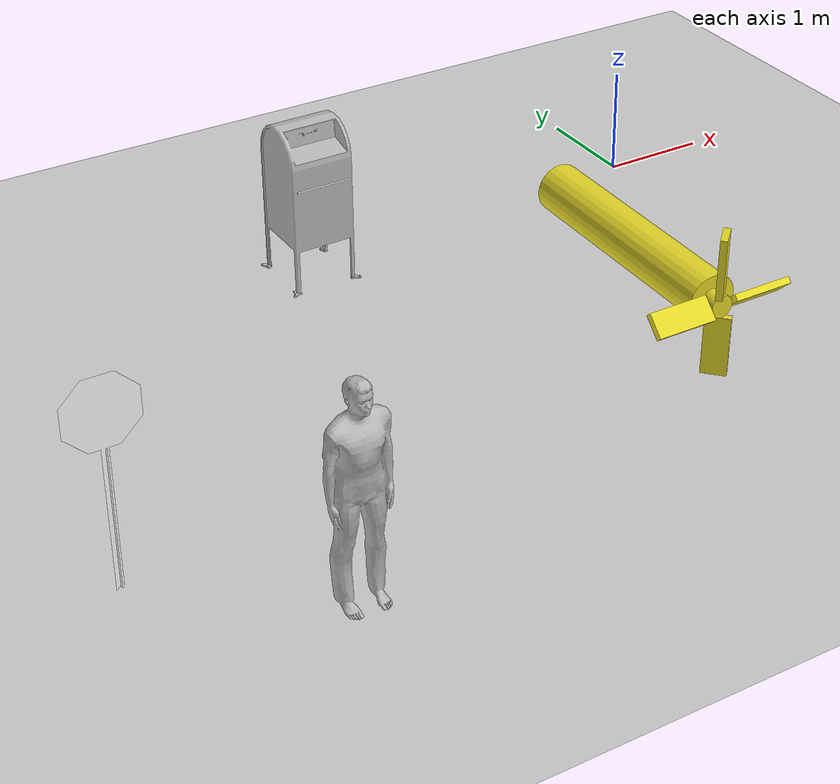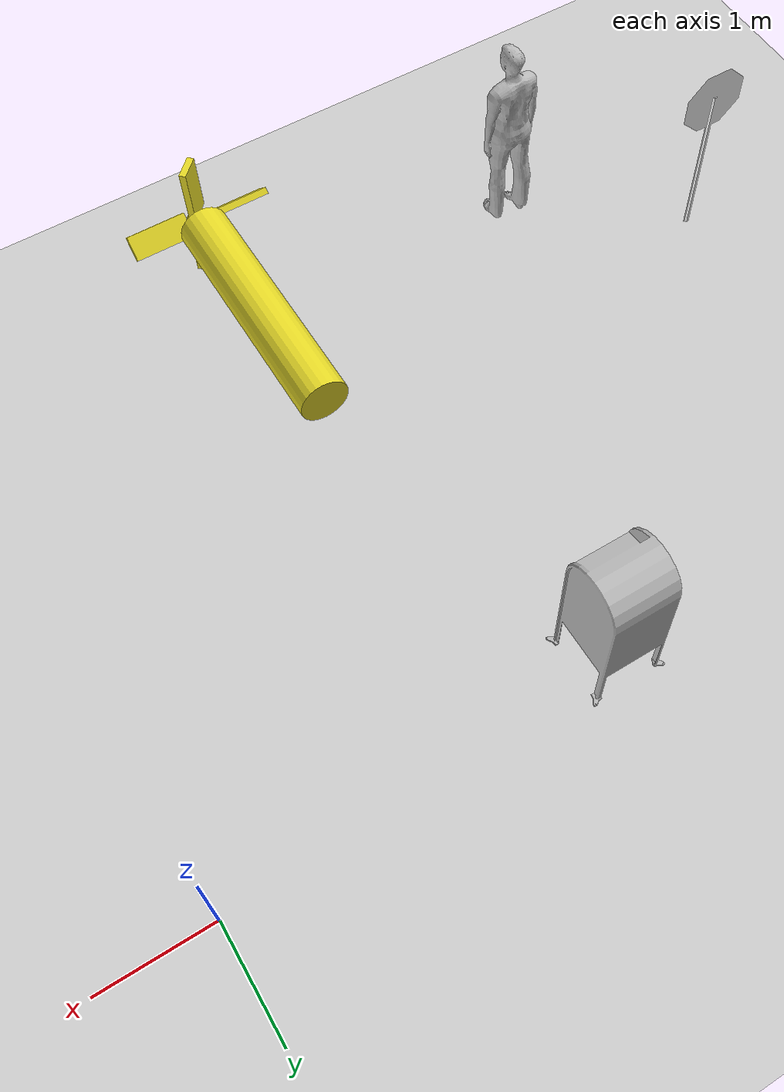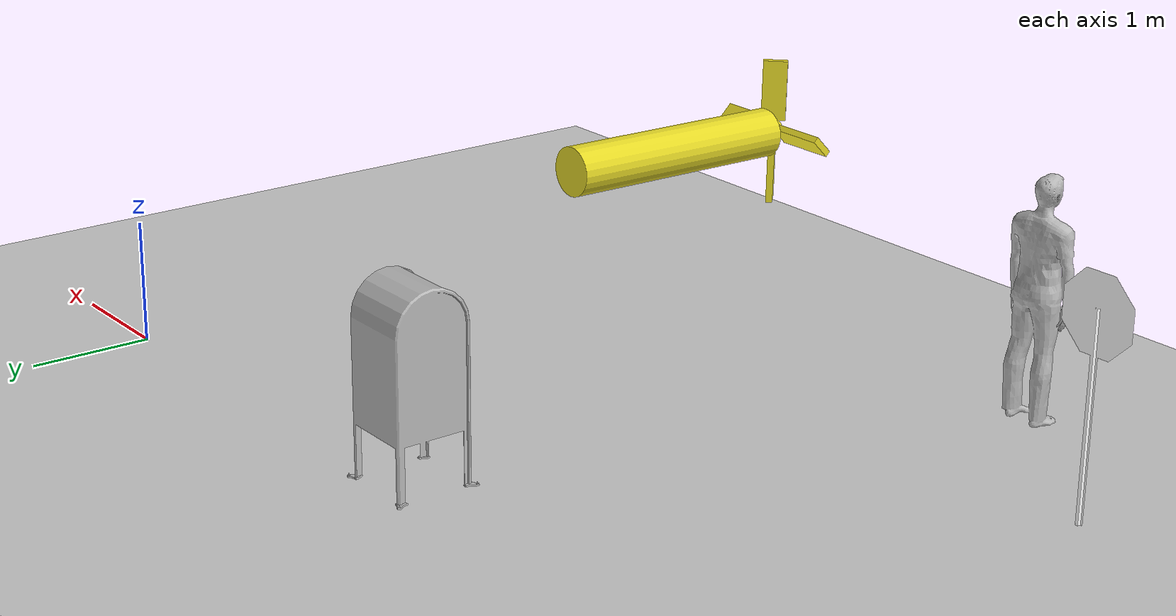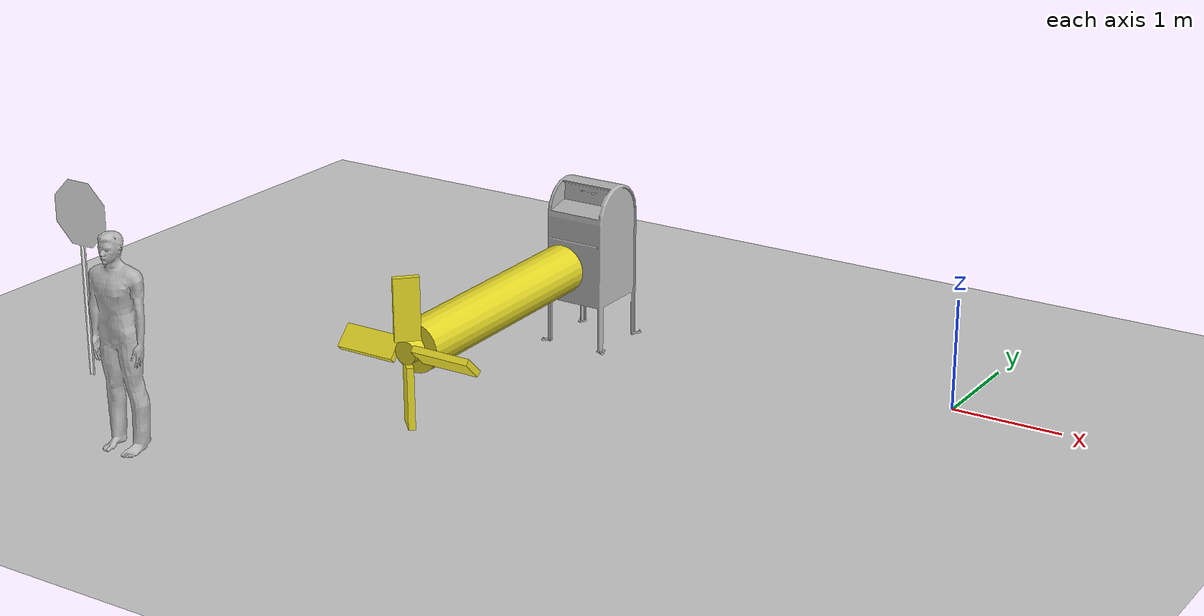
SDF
<sdf version="1.7">
 <world name="default">
  <light name="sun" type="directional">
   <cast_shadows>0</cast_shadows>
   <pose>0 0 10 0 -0 0</pose>
   <diffuse>0.8 0.8 0.8 1</diffuse>
   <specular>0.2 0.2 0.2 1</specular>
   <attenuation>
    <range>1000</range>
    <constant>0.9</constant>
    <linear>0.01</linear>
    <quadratic>0.001</quadratic>
   </attenuation>
   <direction>-0.5 0.1 -0.9</direction>
   <spot><inner_angle>0</inner_angle><outer_angle>0</outer_angle><falloff>0</falloff></spot>
  </light>
  <model name="ground_plane">
   <static>1</static>
   <link name="link">
    <collision name="collision">
     <geometry><plane><normal>0 0 1</normal><size>100 100</size></plane></geometry>
     <surface>
      <contact><collide_bitmask>65535</collide_bitmask></contact>
      <friction><ode><mu>100</mu><mu2>50</mu2></ode></friction>
     </surface>
    </collision>
    <visual name="visual">
     <cast_shadows>0</cast_shadows>
     <geometry><plane><normal>0 0 1</normal><size>100 100</size></plane></geometry>
     <material>
      <script><uri>file://media/materials/scripts/gazebo.material</uri><name>Gazebo/Grey</name></script>
     </material>
    </visual>
   </link>
  </model>
  <gravity>0 0 -9.8</gravity>
  <magnetic_field>6e-06 2.3e-05 -4.2e-05</magnetic_field>
  <atmosphere type="adiabatic"/>
  <physics type="ode">
   <max_step_size>0.001</max_step_size>
   <real_time_factor>1</real_time_factor>
   <real_time_update_rate>1000</real_time_update_rate>
  </physics>
  <scene><ambient>0.4 0.4 0.4 1</ambient><background>0.7 0.7 0.7 1</background><shadows>1</shadows></scene>
  <spherical_coordinates>
   <surface_model>EARTH_WGS84</surface_model>
   <latitude_deg>0</latitude_deg>
   <longitude_deg>0</longitude_deg>
   <elevation>0</elevation>
   <heading_deg>0</heading_deg>
  </spherical_coordinates>
  <model name="postbox">
   <static>1</static>
   <link name="link">
    <collision name="collision">
     <geometry><mesh><uri>model://postbox/meshes/postbox.dae</uri></mesh></geometry>
    </collision>
    <visual name="visual"><geometry><mesh><uri>model://postbox/meshes/postbox.dae</uri></mesh></geometry></visual>
   </link>
   <pose>-3.53904 -0.256443 0 0 -0 0</pose>
  </model>
  <model name="Stop Sign">
   <static>1</static>
   <link name="link">
    <collision name="collision">
     <geometry><mesh><uri>model://stop_sign/meshes/stop_sign.dae</uri></mesh></geometry>
    </collision>
    <visual name="visual">
     <geometry><mesh><uri>model://stop_sign/meshes/stop_sign.dae</uri></mesh></geometry>
     <material>
      <script>
       <uri>model://stop_sign/materials/scripts</uri>
       <uri>model://stop_sign/materials/textures</uri>
       <name>StopSign/Diffuse</name>
      </script>
     </material>
    </visual>
   </link>
   <pose>-6.77786 -3.49675 0 0 -0 0</pose>
  </model>
  <model name="submarine">
   <pose>-2.3987 -3.51217 1.56078 1.58363 -0 0</pose>
   <link name="body">
    <inertial>
     <mass>251.327</mass>
     <inertia><ixx>86.2891</ixx><ixy>0</ixy><ixz>0</ixz><iyy>86.2891</iyy><iyz>0</iyz><izz>5.02655</izz></inertia>
    </inertial>
    <visual name="body_visual">
     <geometry><cylinder><radius>0.2</radius><length>2</length></cylinder></geometry>
     <material>
      <script><uri>file://media/materials/scripts/gazebo.material</uri><name>Gazebo/Yellow</name></script>
     </material>
    </visual>
    <collision name="body_collision">
     <geometry><cylinder><radius>0.2</radius><length>2</length></cylinder></geometry>
    </collision>
    <visual name="spacer_visual">
     <pose>0 0 1.05855 0 -0 0</pose>
     <geometry><cylinder><radius>0.0933402</radius><length>0.127211</length></cylinder></geometry>
     <material>
      <script><uri>file://media/materials/scripts/gazebo.material</uri><name>Gazebo/Yellow</name></script>
     </material>
    </visual>
   </link>
   <link name="propeller">
    <pose>0 0 1.09 3.14159 -0 0</pose>
    <inertial>
     <mass>21.82</mass>
     <inertia>
      <ixx>0.459994</ixx>
      <ixy>0</ixy>
      <ixz>0</ixz>
      <iyy>0.459994</iyy>
      <iyz>0</iyz>
      <izz>0.909167</izz>
     </inertia>
    </inertial>
    <visual name="blade1_visual">
     <pose>0.34334 0 0 0.785398 -0 0</pose>
     <geometry><box><size>0.5 0.2 0.05455</size></box></geometry>
     <material>
      <script><uri>file://media/materials/scripts/gazebo.material</uri><name>Gazebo/Yellow</name></script>
     </material>
    </visual>
    <collision name="blade1_collision">
     <pose>0.34334 0 0 0.785398 -0 0</pose>
     <geometry><box><size>0.5 0.2 0.05455</size></box></geometry>
    </collision>
    <visual name="blade2_visual">
     <pose>0 0.34334 0 0.785398 0 1.5708</pose>
     <geometry><box><size>0.5 0.2 0.05455</size></box></geometry>
     <material>
      <script><uri>file://media/materials/scripts/gazebo.material</uri><name>Gazebo/Yellow</name></script>
     </material>
    </visual>
    <collision name="blade2_collision">
     <pose>0 0.34334 0 0.785398 0 1.5708</pose>
     <geometry><box><size>0.5 0.2 0.05455</size></box></geometry>
    </collision>
    <visual name="blade3_visual">
     <pose>-0.34334 -0 0 -0.785398 0 0</pose>
     <geometry><box><size>0.5 0.2 0.05455</size></box></geometry>
     <material>
      <script><uri>file://media/materials/scripts/gazebo.material</uri><name>Gazebo/Yellow</name></script>
     </material>
    </visual>
    <collision name="blade3_collision">
     <pose>-0.34334 -0 0 -0.785398 0 0</pose>
     <geometry><box><size>0.5 0.2 0.05455</size></box></geometry>
    </collision>
    <visual name="blade4_visual">
     <pose>-0 -0.34334 0 -0.785398 -0 1.5708</pose>
     <geometry><box><size>0.5 0.2 0.05455</size></box></geometry>
     <material>
      <script><uri>file://media/materials/scripts/gazebo.material</uri><name>Gazebo/Yellow</name></script>
     </material>
    </visual>
    <collision name="blade4_collision">
     <pose>-0 -0.34334 0 -0.785398 -0 1.5708</pose>
     <geometry><box><size>0.5 0.2 0.05455</size></box></geometry>
    </collision>
   </link>
   <joint name="spinning_joint" type="revolute">
    <parent>body</parent>
    <child>propeller</child>
    <axis>
     <xyz expressed_in="__model__">0 0 1</xyz>
     <limit><lower>-1e+12</lower><upper>1e+12</upper><effort>-1</effort><velocity>-1</velocity></limit>
     <dynamics><spring_reference>0</spring_reference><spring_stiffness>0</spring_stiffness></dynamics>
    </axis>
   </joint>
   <plugin name="submarine_propeller_1" filename="libLiftDragPlugin.so">
    <air_density>1000</air_density>
    <cla>1.2535816618911175</cla>
    <cla_stall>-1.4326647564469914</cla_stall>
    <cda>0</cda>
    <cda_stall>1.4326647564469914</cda_stall>
    <alpha_stall>1.396</alpha_stall>
    <a0>0</a0>
    <area>0.27637</area>
    <upward>0 -0.7071067811865476 -0.7071067811865475</upward>
    <forward>0 -0.7071067811865475 0.7071067811865476</forward>
    <link_name>propeller</link_name>
    <cp>0.35 0 0</cp>
   </plugin>
   <plugin name="submarine_propeller_2" filename="libLiftDragPlugin.so">
    <air_density>1000</air_density>
    <cla>1.2535816618911175</cla>
    <cla_stall>-1.4326647564469914</cla_stall>
    <cda>0</cda>
    <cda_stall>1.4326647564469914</cda_stall>
    <alpha_stall>1.396</alpha_stall>
    <a0>0</a0>
    <area>0.27637</area>
    <upward>-0.7071067811865475 0 -0.7071067811865476</upward>
    <forward>-0.7071067811865476 0 0.7071067811865475</forward>
    <link_name>propeller</link_name>
    <cp>0 -0.35 0</cp>
   </plugin>
   <plugin name="submarine_propeller_3" filename="libLiftDragPlugin.so">
    <air_density>1000</air_density>
    <cla>1.2535816618911175</cla>
    <cla_stall>-1.4326647564469914</cla_stall>
    <cda>0</cda>
    <cda_stall>1.4326647564469914</cda_stall>
    <alpha_stall>1.396</alpha_stall>
    <a0>0</a0>
    <area>0.27637</area>
    <upward>0 0.7071067811865475 -0.7071067811865476</upward>
    <forward>0 -0.7071067811865476 -0.7071067811865475</forward>
    <link_name>propeller</link_name>
    <cp>-0.35 0 0</cp>
   </plugin>
   <plugin name="submarine_propeller_4" filename="libLiftDragPlugin.so">
    <air_density>1000</air_density>
    <cla>1.2535816618911175</cla>
    <cla_stall>-1.4326647564469914</cla_stall>
    <cda>0</cda>
    <cda_stall>1.4326647564469914</cda_stall>
    <alpha_stall>1.396</alpha_stall>
    <a0>0</a0>
    <area>0.27637</area>
    <upward>0.7071067811865476 0 -0.7071067811865475</upward>
    <forward>0.7071067811865475 0 0.7071067811865476</forward>
    <link_name>propeller</link_name>
    <cp>0 0.35 0</cp>
   </plugin>
   <plugin name="buoyancy" filename="libBuoyancyPlugin.so"><fluid_density>1000</fluid_density></plugin>
  </model>
  <model name="person_standing">
   <link name="link">
    <inertial>
     <pose>0 -0.1 0.95 0 -0 0</pose>
     <mass>80</mass>
     <inertia><ixx>24.88</ixx><ixy>0</ixy><ixz>0</ixz><iyy>25.73</iyy><iyz>0</iyz><izz>2.48</izz></inertia>
    </inertial>
    <collision name="bottom">
     <pose>0 -0.1 0.01 0 -0 0</pose>
     <geometry><box><size>0.5 0.35 0.02</size></box></geometry>
    </collision>
    <collision name="person">
     <pose>0 0 0.02 0.04 -0 0</pose>
     <geometry><mesh><uri>model://person_standing/meshes/standing.dae</uri></mesh></geometry>
    </collision>
    <visual name="visual">
     <pose>0 0 0.02 0.04 -0 0</pose>
     <geometry><mesh><uri>model://person_standing/meshes/standing.dae</uri></mesh></geometry>
    </visual>
   </link>
   <pose>-5.38662 -4.46689 -1e-06 -1e-06 1e-06 -0.000272</pose>
  </model>
 </world>
</sdf>
